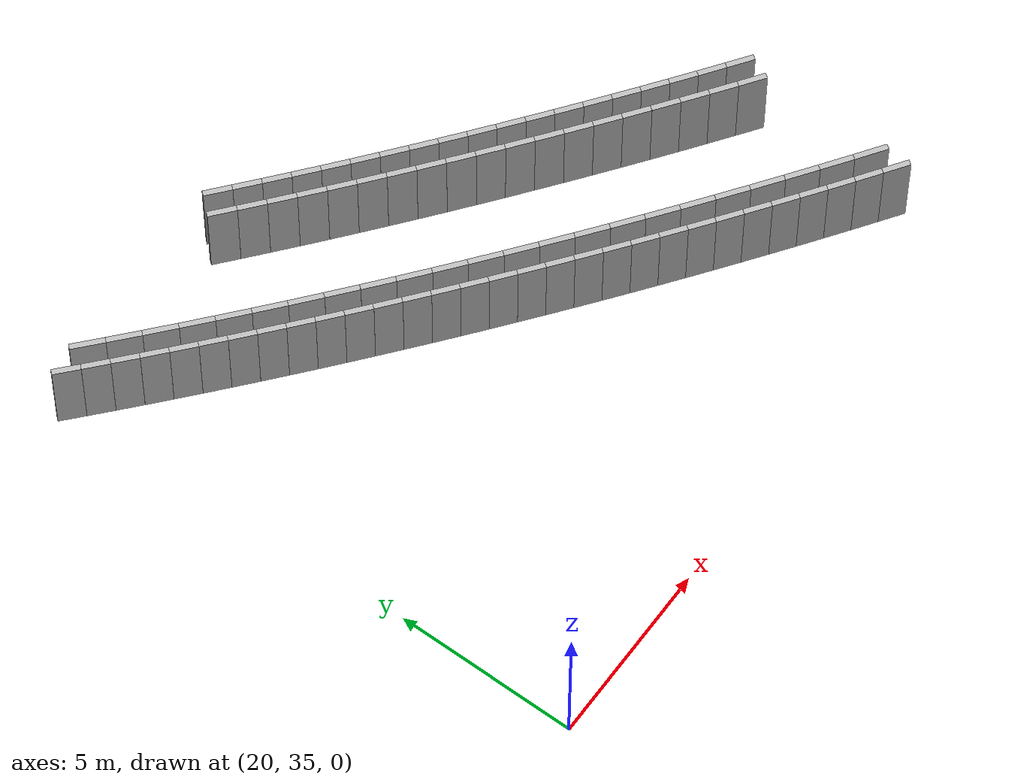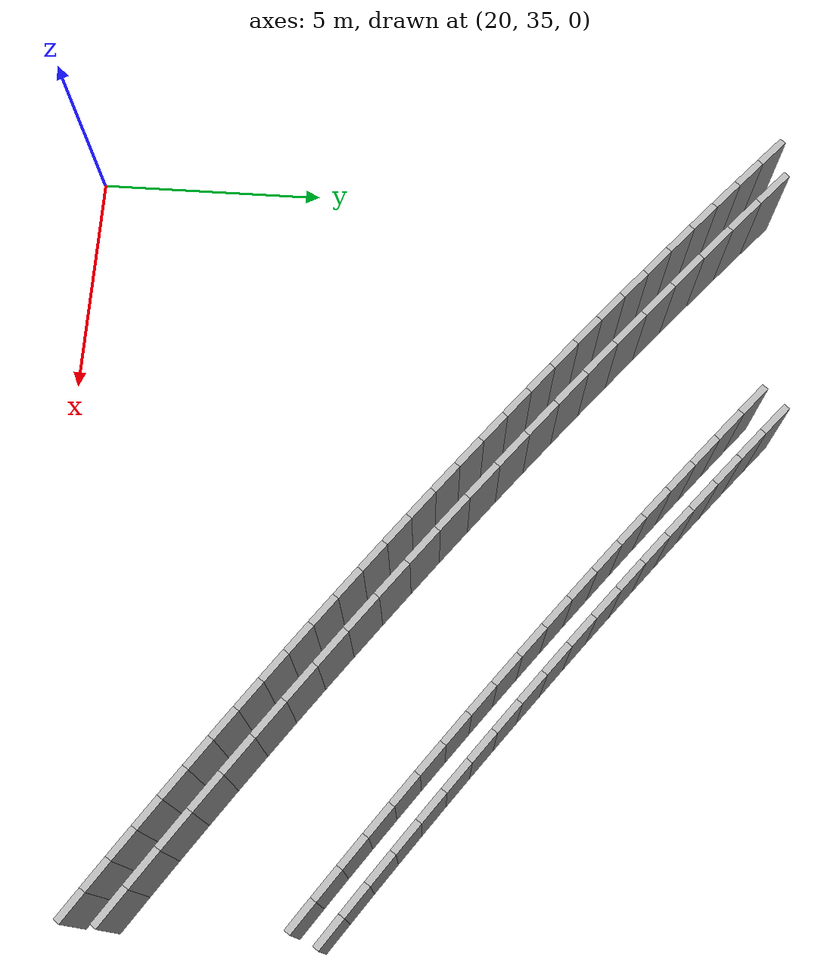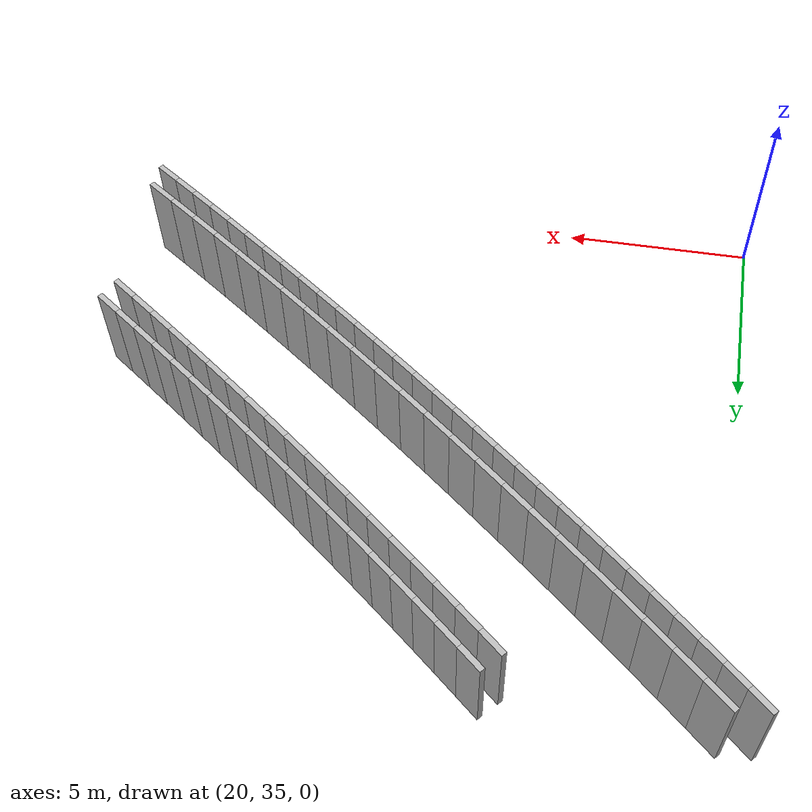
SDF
<sdf version="1.6">
 <model name="sps_0200">
  <static>1</static>
  <allow_auto_disable>0</allow_auto_disable>
  <link name="Wall6516">
   <collision name="collision"><geometry><box><size>0.733459 0.15 2.5</size></box></geometry></collision>
   <visual name="visual">
    <geometry><box><size>0.733459 0.15 2.5</size></box></geometry>
    <transparency>0.0</transparency>
   </visual>
   <pose>19.5955 49.929 1.25 0 0 -0.73271</pose>
  </link>
  <link name="Wall6517">
   <collision name="collision"><geometry><box><size>0.73304 0.15 2.5</size></box></geometry></collision>
   <visual name="visual">
    <geometry><box><size>0.73304 0.15 2.5</size></box></geometry>
    <transparency>0.0</transparency>
   </visual>
   <pose>20.1417 49.4398 1.25 0 0 -0.728081</pose>
  </link>
  <link name="Wall6518">
   <collision name="collision"><geometry><box><size>0.732966 0.15 2.5</size></box></geometry></collision>
   <visual name="visual">
    <geometry><box><size>0.732966 0.15 2.5</size></box></geometry>
    <transparency>0.0</transparency>
   </visual>
   <pose>20.6898 48.9532 1.25 0 0 -0.723828</pose>
  </link>
  <link name="Wall6519">
   <collision name="collision"><geometry><box><size>0.733066 0.15 2.5</size></box></geometry></collision>
   <visual name="visual">
    <geometry><box><size>0.733066 0.15 2.5</size></box></geometry>
    <transparency>0.0</transparency>
   </visual>
   <pose>21.2403 48.4691 1.25 0 0 -0.71894</pose>
  </link>
  <link name="Wall6520">
   <collision name="collision"><geometry><box><size>0.733113 0.15 2.5</size></box></geometry></collision>
   <visual name="visual">
    <geometry><box><size>0.733113 0.15 2.5</size></box></geometry>
    <transparency>0.0</transparency>
   </visual>
   <pose>21.793 47.9875 1.25 0 0 -0.714577</pose>
  </link>
  <link name="Wall6521">
   <collision name="collision"><geometry><box><size>0.733227 0.15 2.5</size></box></geometry></collision>
   <visual name="visual">
    <geometry><box><size>0.733227 0.15 2.5</size></box></geometry>
    <transparency>0.0</transparency>
   </visual>
   <pose>22.3479 47.5083 1.25 0 0 -0.710044</pose>
  </link>
  <link name="Wall6522">
   <collision name="collision"><geometry><box><size>0.733065 0.15 2.5</size></box></geometry></collision>
   <visual name="visual">
    <geometry><box><size>0.733065 0.15 2.5</size></box></geometry>
    <transparency>0.0</transparency>
   </visual>
   <pose>22.905 47.0317 1.25 0 0 -0.705303</pose>
  </link>
  <link name="Wall6523">
   <collision name="collision"><geometry><box><size>0.733069 0.15 2.5</size></box></geometry></collision>
   <visual name="visual">
    <geometry><box><size>0.733069 0.15 2.5</size></box></geometry>
    <transparency>0.0</transparency>
   </visual>
   <pose>23.4642 46.5577 1.25 0 0 -0.700932</pose>
  </link>
  <link name="Wall6524">
   <collision name="collision"><geometry><box><size>0.733314 0.15 2.5</size></box></geometry></collision>
   <visual name="visual">
    <geometry><box><size>0.733314 0.15 2.5</size></box></geometry>
    <transparency>0.0</transparency>
   </visual>
   <pose>24.0256 46.0861 1.25 0 0 -0.696411</pose>
  </link>
  <link name="Wall6525">
   <collision name="collision"><geometry><box><size>0.733081 0.15 2.5</size></box></geometry></collision>
   <visual name="visual">
    <geometry><box><size>0.733081 0.15 2.5</size></box></geometry>
    <transparency>0.0</transparency>
   </visual>
   <pose>24.589 45.617 1.25 0 0 -0.692127</pose>
  </link>
  <link name="Wall6526">
   <collision name="collision"><geometry><box><size>0.732951 0.15 2.5</size></box></geometry></collision>
   <visual name="visual">
    <geometry><box><size>0.732951 0.15 2.5</size></box></geometry>
    <transparency>0.0</transparency>
   </visual>
   <pose>25.1545 45.1506 1.25 0 0 -0.6872</pose>
  </link>
  <link name="Wall6527">
   <collision name="collision"><geometry><box><size>0.733194 0.15 2.5</size></box></geometry></collision>
   <visual name="visual">
    <geometry><box><size>0.733194 0.15 2.5</size></box></geometry>
    <transparency>0.0</transparency>
   </visual>
   <pose>25.7223 44.6868 1.25 0 0 -0.682737</pose>
  </link>
  <link name="Wall6528">
   <collision name="collision"><geometry><box><size>0.733241 0.15 2.5</size></box></geometry></collision>
   <visual name="visual">
    <geometry><box><size>0.733241 0.15 2.5</size></box></geometry>
    <transparency>0.0</transparency>
   </visual>
   <pose>26.2922 44.2255 1.25 0 0 -0.678186</pose>
  </link>
  <link name="Wall6529">
   <collision name="collision"><geometry><box><size>0.733171 0.15 2.5</size></box></geometry></collision>
   <visual name="visual">
    <geometry><box><size>0.733171 0.15 2.5</size></box></geometry>
    <transparency>0.0</transparency>
   </visual>
   <pose>26.8642 43.7668 1.25 0 0 -0.673675</pose>
  </link>
  <link name="Wall6530">
   <collision name="collision"><geometry><box><size>0.733153 0.15 2.5</size></box></geometry></collision>
   <visual name="visual">
    <geometry><box><size>0.733153 0.15 2.5</size></box></geometry>
    <transparency>0.0</transparency>
   </visual>
   <pose>27.4382 43.3107 1.25 0 0 -0.669228</pose>
  </link>
  <link name="Wall6531">
   <collision name="collision"><geometry><box><size>0.732913 0.15 2.5</size></box></geometry></collision>
   <visual name="visual">
    <geometry><box><size>0.732913 0.15 2.5</size></box></geometry>
    <transparency>0.0</transparency>
   </visual>
   <pose>28.0142 42.8573 1.25 0 0 -0.664505</pose>
  </link>
  <link name="Wall6532">
   <collision name="collision"><geometry><box><size>0.73323 0.15 2.5</size></box></geometry></collision>
   <visual name="visual">
    <geometry><box><size>0.73323 0.15 2.5</size></box></geometry>
    <transparency>0.0</transparency>
   </visual>
   <pose>28.5922 42.4065 1.25 0 0 -0.66005</pose>
  </link>
  <link name="Wall6533">
   <collision name="collision"><geometry><box><size>0.733097 0.15 2.5</size></box></geometry></collision>
   <visual name="visual">
    <geometry><box><size>0.733097 0.15 2.5</size></box></geometry>
    <transparency>0.0</transparency>
   </visual>
   <pose>29.1724 41.9583 1.25 0 0 -0.655457</pose>
  </link>
  <link name="Wall6534">
   <collision name="collision"><geometry><box><size>0.732956 0.15 2.5</size></box></geometry></collision>
   <visual name="visual">
    <geometry><box><size>0.732956 0.15 2.5</size></box></geometry>
    <transparency>0.0</transparency>
   </visual>
   <pose>29.7545 41.5128 1.25 0 0 -0.651096</pose>
  </link>
  <link name="Wall6535">
   <collision name="collision"><geometry><box><size>0.733121 0.15 2.5</size></box></geometry></collision>
   <visual name="visual">
    <geometry><box><size>0.733121 0.15 2.5</size></box></geometry>
    <transparency>0.0</transparency>
   </visual>
   <pose>30.3386 41.0699 1.25 0 0 -0.646432</pose>
  </link>
  <link name="Wall6536">
   <collision name="collision"><geometry><box><size>0.733155 0.15 2.5</size></box></geometry></collision>
   <visual name="visual">
    <geometry><box><size>0.733155 0.15 2.5</size></box></geometry>
    <transparency>0.0</transparency>
   </visual>
   <pose>30.9249 40.6296 1.25 0 0 -0.641919</pose>
  </link>
  <link name="Wall6537">
   <collision name="collision"><geometry><box><size>0.733083 0.15 2.5</size></box></geometry></collision>
   <visual name="visual">
    <geometry><box><size>0.733083 0.15 2.5</size></box></geometry>
    <transparency>0.0</transparency>
   </visual>
   <pose>31.5131 40.192 1.25 0 0 -0.637323</pose>
  </link>
  <link name="Wall6538">
   <collision name="collision"><geometry><box><size>0.733147 0.15 2.5</size></box></geometry></collision>
   <visual name="visual">
    <geometry><box><size>0.733147 0.15 2.5</size></box></geometry>
    <transparency>0.0</transparency>
   </visual>
   <pose>32.1032 39.7571 1.25 0 0 -0.632811</pose>
  </link>
  <link name="Wall6539">
   <collision name="collision"><geometry><box><size>0.732971 0.15 2.5</size></box></geometry></collision>
   <visual name="visual">
    <geometry><box><size>0.732971 0.15 2.5</size></box></geometry>
    <transparency>0.0</transparency>
   </visual>
   <pose>32.6953 39.3249 1.25 0 0 -0.628245</pose>
  </link>
  <link name="Wall6540">
   <collision name="collision"><geometry><box><size>0.73325 0.15 2.5</size></box></geometry></collision>
   <visual name="visual">
    <geometry><box><size>0.73325 0.15 2.5</size></box></geometry>
    <transparency>0.0</transparency>
   </visual>
   <pose>33.2895 38.8954 1.25 0 0 -0.623656</pose>
  </link>
  <link name="Wall6541">
   <collision name="collision"><geometry><box><size>0.733161 0.15 2.5</size></box></geometry></collision>
   <visual name="visual">
    <geometry><box><size>0.733161 0.15 2.5</size></box></geometry>
    <transparency>0.0</transparency>
   </visual>
   <pose>33.8856 38.4685 1.25 0 0 -0.61934</pose>
  </link>
  <link name="Wall6542">
   <collision name="collision"><geometry><box><size>0.733179 0.15 2.5</size></box></geometry></collision>
   <visual name="visual">
    <geometry><box><size>0.733179 0.15 2.5</size></box></geometry>
    <transparency>0.0</transparency>
   </visual>
   <pose>34.4835 38.0443 1.25 0 0 -0.614627</pose>
  </link>
  <link name="Wall6543">
   <collision name="collision"><geometry><box><size>0.733204 0.15 2.5</size></box></geometry></collision>
   <visual name="visual">
    <geometry><box><size>0.733204 0.15 2.5</size></box></geometry>
    <transparency>0.0</transparency>
   </visual>
   <pose>35.0835 37.6228 1.25 0 0 -0.61033</pose>
  </link>
  <link name="Wall6544">
   <collision name="collision"><geometry><box><size>0.733064 0.15 2.5</size></box></geometry></collision>
   <visual name="visual">
    <geometry><box><size>0.733064 0.15 2.5</size></box></geometry>
    <transparency>0.0</transparency>
   </visual>
   <pose>35.6853 37.2041 1.25 0 0 -0.605392</pose>
  </link>
  <link name="Wall6545">
   <collision name="collision"><geometry><box><size>0.733118 0.15 2.5</size></box></geometry></collision>
   <visual name="visual">
    <geometry><box><size>0.733118 0.15 2.5</size></box></geometry>
    <transparency>0.0</transparency>
   </visual>
   <pose>36.289 36.7882 1.25 0 0 -0.601095</pose>
  </link>
  <link name="Wall24536">
   <collision name="collision"><geometry><box><size>0.913664 0.15 2.5</size></box></geometry></collision>
   <visual name="visual">
    <geometry><box><size>0.913664 0.15 2.5</size></box></geometry>
    <transparency>0.0</transparency>
   </visual>
   <pose>20.4693 49.9519 1.25 0 0 -0.728684</pose>
  </link>
  <link name="Wall24537">
   <collision name="collision"><geometry><box><size>0.9138 0.15 2.5</size></box></geometry></collision>
   <visual name="visual">
    <geometry><box><size>0.9138 0.15 2.5</size></box></geometry>
    <transparency>0.0</transparency>
   </visual>
   <pose>21.1527 49.3454 1.25 0 0 -0.723015</pose>
  </link>
  <link name="Wall24538">
   <collision name="collision"><geometry><box><size>0.913874 0.15 2.5</size></box></geometry></collision>
   <visual name="visual">
    <geometry><box><size>0.913874 0.15 2.5</size></box></geometry>
    <transparency>0.0</transparency>
   </visual>
   <pose>21.8396 48.7427 1.25 0 0 -0.717435</pose>
  </link>
  <link name="Wall24539">
   <collision name="collision"><geometry><box><size>0.913816 0.15 2.5</size></box></geometry></collision>
   <visual name="visual">
    <geometry><box><size>0.913816 0.15 2.5</size></box></geometry>
    <transparency>0.0</transparency>
   </visual>
   <pose>22.5299 48.1439 1.25 0 0 -0.711655</pose>
  </link>
  <link name="Wall24540">
   <collision name="collision"><geometry><box><size>0.913603 0.15 2.5</size></box></geometry></collision>
   <visual name="visual">
    <geometry><box><size>0.913603 0.15 2.5</size></box></geometry>
    <transparency>0.0</transparency>
   </visual>
   <pose>23.2235 47.5491 1.25 0 0 -0.706047</pose>
  </link>
  <link name="Wall24541">
   <collision name="collision"><geometry><box><size>0.913645 0.15 2.5</size></box></geometry></collision>
   <visual name="visual">
    <geometry><box><size>0.913645 0.15 2.5</size></box></geometry>
    <transparency>0.0</transparency>
   </visual>
   <pose>23.9204 46.9583 1.25 0 0 -0.700315</pose>
  </link>
  <link name="Wall24542">
   <collision name="collision"><geometry><box><size>0.913787 0.15 2.5</size></box></geometry></collision>
   <visual name="visual">
    <geometry><box><size>0.913787 0.15 2.5</size></box></geometry>
    <transparency>0.0</transparency>
   </visual>
   <pose>24.6207 46.3714 1.25 0 0 -0.694781</pose>
  </link>
  <link name="Wall24543">
   <collision name="collision"><geometry><box><size>0.913552 0.15 2.5</size></box></geometry></collision>
   <visual name="visual">
    <geometry><box><size>0.913552 0.15 2.5</size></box></geometry>
    <transparency>0.0</transparency>
   </visual>
   <pose>25.3242 45.7885 1.25 0 0 -0.688921</pose>
  </link>
  <link name="Wall24544">
   <collision name="collision"><geometry><box><size>0.913838 0.15 2.5</size></box></geometry></collision>
   <visual name="visual">
    <geometry><box><size>0.913838 0.15 2.5</size></box></geometry>
    <transparency>0.0</transparency>
   </visual>
   <pose>26.0312 45.2096 1.25 0 0 -0.683399</pose>
  </link>
  <link name="Wall24545">
   <collision name="collision"><geometry><box><size>0.913797 0.15 2.5</size></box></geometry></collision>
   <visual name="visual">
    <geometry><box><size>0.913797 0.15 2.5</size></box></geometry>
    <transparency>0.0</transparency>
   </visual>
   <pose>26.7414 44.6347 1.25 0 0 -0.677505</pose>
  </link>
  <link name="Wall24546">
   <collision name="collision"><geometry><box><size>0.913664 0.15 2.5</size></box></geometry></collision>
   <visual name="visual">
    <geometry><box><size>0.913664 0.15 2.5</size></box></geometry>
    <transparency>0.0</transparency>
   </visual>
   <pose>27.4549 44.0639 1.25 0 0 -0.671976</pose>
  </link>
  <link name="Wall24547">
   <collision name="collision"><geometry><box><size>0.913836 0.15 2.5</size></box></geometry></collision>
   <visual name="visual">
    <geometry><box><size>0.913836 0.15 2.5</size></box></geometry>
    <transparency>0.0</transparency>
   </visual>
   <pose>28.1717 43.4971 1.25 0 0 -0.666292</pose>
  </link>
  <link name="Wall24548">
   <collision name="collision"><geometry><box><size>0.913647 0.15 2.5</size></box></geometry></collision>
   <visual name="visual">
    <geometry><box><size>0.913647 0.15 2.5</size></box></geometry>
    <transparency>0.0</transparency>
   </visual>
   <pose>28.8916 42.9344 1.25 0 0 -0.660604</pose>
  </link>
  <link name="Wall24549">
   <collision name="collision"><geometry><box><size>0.913536 0.15 2.5</size></box></geometry></collision>
   <visual name="visual">
    <geometry><box><size>0.913536 0.15 2.5</size></box></geometry>
    <transparency>0.0</transparency>
   </visual>
   <pose>29.6146 42.3759 1.25 0 0 -0.654873</pose>
  </link>
  <link name="Wall24550">
   <collision name="collision"><geometry><box><size>0.913822 0.15 2.5</size></box></geometry></collision>
   <visual name="visual">
    <geometry><box><size>0.913822 0.15 2.5</size></box></geometry>
    <transparency>0.0</transparency>
   </visual>
   <pose>30.3408 41.8214 1.25 0 0 -0.649339</pose>
  </link>
  <link name="Wall24551">
   <collision name="collision"><geometry><box><size>0.913696 0.15 2.5</size></box></geometry></collision>
   <visual name="visual">
    <geometry><box><size>0.913696 0.15 2.5</size></box></geometry>
    <transparency>0.0</transparency>
   </visual>
   <pose>31.0702 41.271 1.25 0 0 -0.643501</pose>
  </link>
  <link name="Wall24552">
   <collision name="collision"><geometry><box><size>0.913735 0.15 2.5</size></box></geometry></collision>
   <visual name="visual">
    <geometry><box><size>0.913735 0.15 2.5</size></box></geometry>
    <transparency>0.0</transparency>
   </visual>
   <pose>31.8026 40.7248 1.25 0 0 -0.63797</pose>
  </link>
  <link name="Wall24553">
   <collision name="collision"><geometry><box><size>0.913877 0.15 2.5</size></box></geometry></collision>
   <visual name="visual">
    <geometry><box><size>0.913877 0.15 2.5</size></box></geometry>
    <transparency>0.0</transparency>
   </visual>
   <pose>32.5383 40.1827 1.25 0 0 -0.632214</pose>
  </link>
  <link name="Wall24554">
   <collision name="collision"><geometry><box><size>0.91373 0.15 2.5</size></box></geometry></collision>
   <visual name="visual">
    <geometry><box><size>0.91373 0.15 2.5</size></box></geometry>
    <transparency>0.0</transparency>
   </visual>
   <pose>33.277 39.6448 1.25 0 0 -0.626547</pose>
  </link>
  <link name="Wall24555">
   <collision name="collision"><geometry><box><size>0.913676 0.15 2.5</size></box></geometry></collision>
   <visual name="visual">
    <geometry><box><size>0.913676 0.15 2.5</size></box></geometry>
    <transparency>0.0</transparency>
   </visual>
   <pose>34.0187 39.1112 1.25 0 0 -0.620746</pose>
  </link>
  <link name="Wall24556">
   <collision name="collision"><geometry><box><size>0.91373 0.15 2.5</size></box></geometry></collision>
   <visual name="visual">
    <geometry><box><size>0.91373 0.15 2.5</size></box></geometry>
    <transparency>0.0</transparency>
   </visual>
   <pose>34.7634 38.5818 1.25 0 0 -0.615295</pose>
  </link>
  <link name="Wall24557">
   <collision name="collision"><geometry><box><size>0.913666 0.15 2.5</size></box></geometry></collision>
   <visual name="visual">
    <geometry><box><size>0.913666 0.15 2.5</size></box></geometry>
    <transparency>0.0</transparency>
   </visual>
   <pose>35.511 38.0566 1.25 0 0 -0.609385</pose>
  </link>
  <link name="Wall24558">
   <collision name="collision"><geometry><box><size>0.913758 0.15 2.5</size></box></geometry></collision>
   <visual name="visual">
    <geometry><box><size>0.913758 0.15 2.5</size></box></geometry>
    <transparency>0.0</transparency>
   </visual>
   <pose>36.2617 37.5357 1.25 0 0 -0.603787</pose>
  </link>
  <link name="Wall27454">
   <collision name="collision"><geometry><box><size>0.763542 0.15 2.5</size></box></geometry></collision>
   <visual name="visual">
    <geometry><box><size>0.763542 0.15 2.5</size></box></geometry>
    <transparency>0.0</transparency>
   </visual>
   <pose>25.3596 49.5398 1.25 0 0 -0.70397</pose>
  </link>
  <link name="Wall27455">
   <collision name="collision"><geometry><box><size>0.76343 0.15 2.5</size></box></geometry></collision>
   <visual name="visual">
    <geometry><box><size>0.76343 0.15 2.5</size></box></geometry>
    <transparency>0.0</transparency>
   </visual>
   <pose>25.9429 49.0471 1.25 0 0 -0.698966</pose>
  </link>
  <link name="Wall27456">
   <collision name="collision"><geometry><box><size>0.763572 0.15 2.5</size></box></geometry></collision>
   <visual name="visual">
    <geometry><box><size>0.763572 0.15 2.5</size></box></geometry>
    <transparency>0.0</transparency>
   </visual>
   <pose>26.5285 48.5572 1.25 0 0 -0.694329</pose>
  </link>
  <link name="Wall27457">
   <collision name="collision"><geometry><box><size>0.763497 0.15 2.5</size></box></geometry></collision>
   <visual name="visual">
    <geometry><box><size>0.763497 0.15 2.5</size></box></geometry>
    <transparency>0.0</transparency>
   </visual>
   <pose>27.1164 48.0701 1.25 0 0 -0.689324</pose>
  </link>
  <link name="Wall27458">
   <collision name="collision"><geometry><box><size>0.763462 0.15 2.5</size></box></geometry></collision>
   <visual name="visual">
    <geometry><box><size>0.763462 0.15 2.5</size></box></geometry>
    <transparency>0.0</transparency>
   </visual>
   <pose>27.7067 47.5859 1.25 0 0 -0.684605</pose>
  </link>
  <link name="Wall27459">
   <collision name="collision"><geometry><box><size>0.76354 0.15 2.5</size></box></geometry></collision>
   <visual name="visual">
    <geometry><box><size>0.76354 0.15 2.5</size></box></geometry>
    <transparency>0.0</transparency>
   </visual>
   <pose>28.2994 47.1045 1.25 0 0 -0.679785</pose>
  </link>
  <link name="Wall27460">
   <collision name="collision"><geometry><box><size>0.763416 0.15 2.5</size></box></geometry></collision>
   <visual name="visual">
    <geometry><box><size>0.763416 0.15 2.5</size></box></geometry>
    <transparency>0.0</transparency>
   </visual>
   <pose>28.8943 46.626 1.25 0 0 -0.674991</pose>
  </link>
  <link name="Wall27461">
   <collision name="collision"><geometry><box><size>0.76349 0.15 2.5</size></box></geometry></collision>
   <visual name="visual">
    <geometry><box><size>0.76349 0.15 2.5</size></box></geometry>
    <transparency>0.0</transparency>
   </visual>
   <pose>29.4915 46.1504 1.25 0 0 -0.670109</pose>
  </link>
  <link name="Wall27462">
   <collision name="collision"><geometry><box><size>0.763364 0.15 2.5</size></box></geometry></collision>
   <visual name="visual">
    <geometry><box><size>0.763364 0.15 2.5</size></box></geometry>
    <transparency>0.0</transparency>
   </visual>
   <pose>30.091 45.6777 1.25 0 0 -0.665251</pose>
  </link>
  <link name="Wall27463">
   <collision name="collision"><geometry><box><size>0.763561 0.15 2.5</size></box></geometry></collision>
   <visual name="visual">
    <geometry><box><size>0.763561 0.15 2.5</size></box></geometry>
    <transparency>0.0</transparency>
   </visual>
   <pose>30.6928 45.2079 1.25 0 0 -0.660384</pose>
  </link>
  <link name="Wall27464">
   <collision name="collision"><geometry><box><size>0.763571 0.15 2.5</size></box></geometry></collision>
   <visual name="visual">
    <geometry><box><size>0.763571 0.15 2.5</size></box></geometry>
    <transparency>0.0</transparency>
   </visual>
   <pose>31.2969 44.7409 1.25 0 0 -0.655827</pose>
  </link>
  <link name="Wall27465">
   <collision name="collision"><geometry><box><size>0.763398 0.15 2.5</size></box></geometry></collision>
   <visual name="visual">
    <geometry><box><size>0.763398 0.15 2.5</size></box></geometry>
    <transparency>0.0</transparency>
   </visual>
   <pose>31.9032 44.2769 1.25 0 0 -0.650665</pose>
  </link>
  <link name="Wall27466">
   <collision name="collision"><geometry><box><size>0.763601 0.15 2.5</size></box></geometry></collision>
   <visual name="visual">
    <geometry><box><size>0.763601 0.15 2.5</size></box></geometry>
    <transparency>0.0</transparency>
   </visual>
   <pose>32.5118 43.8159 1.25 0 0 -0.645851</pose>
  </link>
  <link name="Wall27467">
   <collision name="collision"><geometry><box><size>0.763478 0.15 2.5</size></box></geometry></collision>
   <visual name="visual">
    <geometry><box><size>0.763478 0.15 2.5</size></box></geometry>
    <transparency>0.0</transparency>
   </visual>
   <pose>33.1226 43.3577 1.25 0 0 -0.641375</pose>
  </link>
  <link name="Wall27468">
   <collision name="collision"><geometry><box><size>0.763595 0.15 2.5</size></box></geometry></collision>
   <visual name="visual">
    <geometry><box><size>0.763595 0.15 2.5</size></box></geometry>
    <transparency>0.0</transparency>
   </visual>
   <pose>33.7356 42.9025 1.25 0 0 -0.636083</pose>
  </link>
  <link name="Wall27469">
   <collision name="collision"><geometry><box><size>0.763457 0.15 2.5</size></box></geometry></collision>
   <visual name="visual">
    <geometry><box><size>0.763457 0.15 2.5</size></box></geometry>
    <transparency>0.0</transparency>
   </visual>
   <pose>34.3508 42.4503 1.25 0 0 -0.631653</pose>
  </link>
  <link name="Wall27470">
   <collision name="collision"><geometry><box><size>0.763528 0.15 2.5</size></box></geometry></collision>
   <visual name="visual">
    <geometry><box><size>0.763528 0.15 2.5</size></box></geometry>
    <transparency>0.0</transparency>
   </visual>
   <pose>34.9681 42.0011 1.25 0 0 -0.626345</pose>
  </link>
  <link name="Wall27471">
   <collision name="collision"><geometry><box><size>0.763557 0.15 2.5</size></box></geometry></collision>
   <visual name="visual">
    <geometry><box><size>0.763557 0.15 2.5</size></box></geometry>
    <transparency>0.0</transparency>
   </visual>
   <pose>35.5877 41.5549 1.25 0 0 -0.621885</pose>
  </link>
  <link name="Wall27472">
   <collision name="collision"><geometry><box><size>0.763575 0.15 2.5</size></box></geometry></collision>
   <visual name="visual">
    <geometry><box><size>0.763575 0.15 2.5</size></box></geometry>
    <transparency>0.0</transparency>
   </visual>
   <pose>36.2094 41.1116 1.25 0 0 -0.61696</pose>
  </link>
  <link name="Wall27523">
   <collision name="collision"><geometry><box><size>0.753599 0.15 2.5</size></box></geometry></collision>
   <visual name="visual">
    <geometry><box><size>0.753599 0.15 2.5</size></box></geometry>
    <transparency>0.0</transparency>
   </visual>
   <pose>25.7614 49.9857 1.25 0 0 -0.703698</pose>
  </link>
  <link name="Wall27524">
   <collision name="collision"><geometry><box><size>0.753584 0.15 2.5</size></box></geometry></collision>
   <visual name="visual">
    <geometry><box><size>0.753584 0.15 2.5</size></box></geometry>
    <transparency>0.0</transparency>
   </visual>
   <pose>26.3371 49.4994 1.25 0 0 -0.699156</pose>
  </link>
  <link name="Wall27525">
   <collision name="collision"><geometry><box><size>0.753538 0.15 2.5</size></box></geometry></collision>
   <visual name="visual">
    <geometry><box><size>0.753538 0.15 2.5</size></box></geometry>
    <transparency>0.0</transparency>
   </visual>
   <pose>26.9151 49.0159 1.25 0 0 -0.694033</pose>
  </link>
  <link name="Wall27526">
   <collision name="collision"><geometry><box><size>0.753547 0.15 2.5</size></box></geometry></collision>
   <visual name="visual">
    <geometry><box><size>0.753547 0.15 2.5</size></box></geometry>
    <transparency>0.0</transparency>
   </visual>
   <pose>27.4954 48.5352 1.25 0 0 -0.689605</pose>
  </link>
  <link name="Wall27527">
   <collision name="collision"><geometry><box><size>0.753357 0.15 2.5</size></box></geometry></collision>
   <visual name="visual">
    <geometry><box><size>0.753357 0.15 2.5</size></box></geometry>
    <transparency>0.0</transparency>
   </visual>
   <pose>28.0778 48.0573 1.25 0 0 -0.684572</pose>
  </link>
  <link name="Wall27528">
   <collision name="collision"><geometry><box><size>0.753589 0.15 2.5</size></box></geometry></collision>
   <visual name="visual">
    <geometry><box><size>0.753589 0.15 2.5</size></box></geometry>
    <transparency>0.0</transparency>
   </visual>
   <pose>28.6627 47.5822 1.25 0 0 -0.67994</pose>
  </link>
  <link name="Wall27529">
   <collision name="collision"><geometry><box><size>0.75354 0.15 2.5</size></box></geometry></collision>
   <visual name="visual">
    <geometry><box><size>0.75354 0.15 2.5</size></box></geometry>
    <transparency>0.0</transparency>
   </visual>
   <pose>29.2497 47.1098 1.25 0 0 -0.675209</pose>
  </link>
  <link name="Wall27530">
   <collision name="collision"><geometry><box><size>0.753395 0.15 2.5</size></box></geometry></collision>
   <visual name="visual">
    <geometry><box><size>0.753395 0.15 2.5</size></box></geometry>
    <transparency>0.0</transparency>
   </visual>
   <pose>29.839 46.6403 1.25 0 0 -0.670287</pose>
  </link>
  <link name="Wall27531">
   <collision name="collision"><geometry><box><size>0.753536 0.15 2.5</size></box></geometry></collision>
   <visual name="visual">
    <geometry><box><size>0.753536 0.15 2.5</size></box></geometry>
    <transparency>0.0</transparency>
   </visual>
   <pose>30.4307 46.1737 1.25 0 0 -0.665291</pose>
  </link>
  <link name="Wall27532">
   <collision name="collision"><geometry><box><size>0.753529 0.15 2.5</size></box></geometry></collision>
   <visual name="visual">
    <geometry><box><size>0.753529 0.15 2.5</size></box></geometry>
    <transparency>0.0</transparency>
   </visual>
   <pose>31.0246 45.7099 1.25 0 0 -0.660674</pose>
  </link>
  <link name="Wall27533">
   <collision name="collision"><geometry><box><size>0.753598 0.15 2.5</size></box></geometry></collision>
   <visual name="visual">
    <geometry><box><size>0.753598 0.15 2.5</size></box></geometry>
    <transparency>0.0</transparency>
   </visual>
   <pose>31.6207 45.2489 1.25 0 0 -0.655893</pose>
  </link>
  <link name="Wall27534">
   <collision name="collision"><geometry><box><size>0.753624 0.15 2.5</size></box></geometry></collision>
   <visual name="visual">
    <geometry><box><size>0.753624 0.15 2.5</size></box></geometry>
    <transparency>0.0</transparency>
   </visual>
   <pose>32.219 44.7907 1.25 0 0 -0.651276</pose>
  </link>
  <link name="Wall27535">
   <collision name="collision"><geometry><box><size>0.753433 0.15 2.5</size></box></geometry></collision>
   <visual name="visual">
    <geometry><box><size>0.753433 0.15 2.5</size></box></geometry>
    <transparency>0.0</transparency>
   </visual>
   <pose>32.8194 44.3354 1.25 0 0 -0.646385</pose>
  </link>
  <link name="Wall27536">
   <collision name="collision"><geometry><box><size>0.753602 0.15 2.5</size></box></geometry></collision>
   <visual name="visual">
    <geometry><box><size>0.753602 0.15 2.5</size></box></geometry>
    <transparency>0.0</transparency>
   </visual>
   <pose>33.422 43.883 1.25 0 0 -0.641557</pose>
  </link>
  <link name="Wall27537">
   <collision name="collision"><geometry><box><size>0.753593 0.15 2.5</size></box></geometry></collision>
   <visual name="visual">
    <geometry><box><size>0.753593 0.15 2.5</size></box></geometry>
    <transparency>0.0</transparency>
   </visual>
   <pose>34.0268 43.4334 1.25 0 0 -0.636924</pose>
  </link>
  <link name="Wall27538">
   <collision name="collision"><geometry><box><size>0.753432 0.15 2.5</size></box></geometry></collision>
   <visual name="visual">
    <geometry><box><size>0.753432 0.15 2.5</size></box></geometry>
    <transparency>0.0</transparency>
   </visual>
   <pose>34.6337 42.9868 1.25 0 0 -0.631852</pose>
  </link>
  <link name="Wall27539">
   <collision name="collision"><geometry><box><size>0.753713 0.15 2.5</size></box></geometry></collision>
   <visual name="visual">
    <geometry><box><size>0.753713 0.15 2.5</size></box></geometry>
    <transparency>0.0</transparency>
   </visual>
   <pose>35.2428 42.5431 1.25 0 0 -0.627272</pose>
  </link>
  <link name="Wall27540">
   <collision name="collision"><geometry><box><size>0.753589 0.15 2.5</size></box></geometry></collision>
   <visual name="visual">
    <geometry><box><size>0.753589 0.15 2.5</size></box></geometry>
    <transparency>0.0</transparency>
   </visual>
   <pose>35.8541 42.1023 1.25 0 0 -0.622198</pose>
  </link>
  <link name="Wall27541">
   <collision name="collision"><geometry><box><size>0.753448 0.15 2.5</size></box></geometry></collision>
   <visual name="visual">
    <geometry><box><size>0.753448 0.15 2.5</size></box></geometry>
    <transparency>0.0</transparency>
   </visual>
   <pose>36.4673 41.6645 1.25 0 0 -0.617754</pose>
  </link>
 </model>
</sdf>
